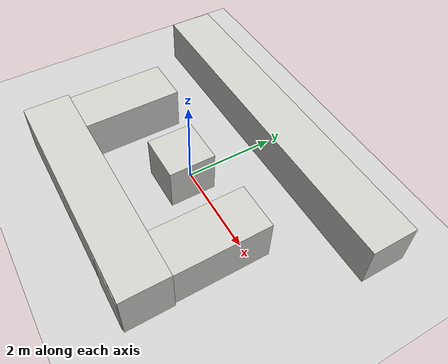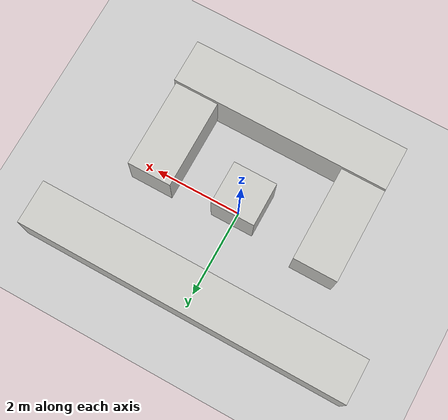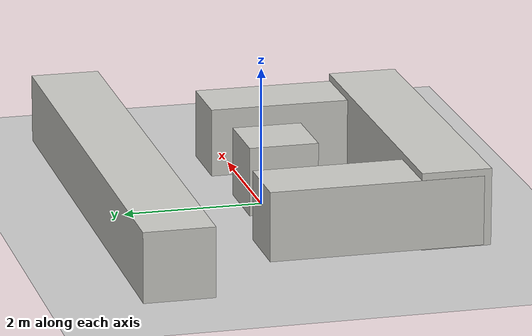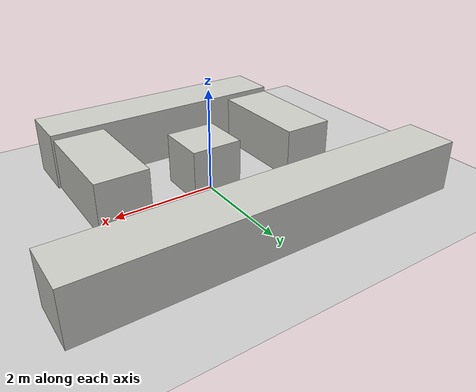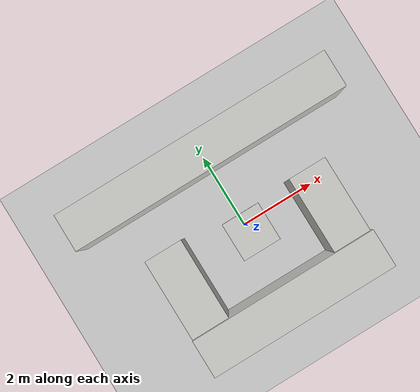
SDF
<sdf version="1.6">
 <world name="default">
  <model name="ground_plane">
   <static>1</static>
   <link name="link">
    <collision name="collision">
     <geometry><plane><normal>0 0 1</normal><size>100 100</size></plane></geometry>
     <surface><friction><ode><mu>100</mu><mu2>50</mu2></ode></friction></surface>
    </collision>
    <visual name="visual">
     <cast_shadows>0</cast_shadows>
     <geometry><plane><normal>0 0 1</normal><size>100 100</size></plane></geometry>
     <material>
      <script><uri>file://media/materials/scripts/gazebo.material</uri><name>Gazebo/Grey</name></script>
     </material>
    </visual>
   </link>
  </model>
  <light name="sun" type="directional">
   <pose>0 0 10 0 -0 0</pose>
   <diffuse>0.8 0.8 0.8 1</diffuse>
   <specular>0.2 0.2 0.2 1</specular>
   <attenuation>
    <range>1000</range>
    <constant>0.9</constant>
    <linear>0.01</linear>
    <quadratic>0.001</quadratic>
   </attenuation>
   <direction>-0.5 0.1 -0.9</direction>
  </light>
  <gravity>0 0 -9.8</gravity>
  <magnetic_field>6e-06 2.3e-05 -4.2e-05</magnetic_field>
  <atmosphere type="adiabatic"/>
  <physics name="default_physics" default="0" type="ode">
   <max_step_size>0.001</max_step_size>
   <real_time_factor>1</real_time_factor>
   <real_time_update_rate>1000</real_time_update_rate>
  </physics>
  <scene><ambient>0.4 0.4 0.4 1</ambient><background>0.7 0.7 0.7 1</background><shadows>1</shadows></scene>
  <spherical_coordinates>
   <surface_model>EARTH_WGS84</surface_model>
   <latitude_deg>0</latitude_deg>
   <longitude_deg>0</longitude_deg>
   <elevation>0</elevation>
   <heading_deg>0</heading_deg>
  </spherical_coordinates>
  <model name="small_exit">
   <link name="link_0">
    <pose>0.02614 0.284108 0 0 -0 0</pose>
    <inertial>
     <mass>1</mass>
     <inertia>
      <ixx>0.166667</ixx>
      <ixy>0</ixy>
      <ixz>0</ixz>
      <iyy>0.166667</iyy>
      <iyz>0</iyz>
      <izz>0.166667</izz>
     </inertia>
    </inertial>
    <visual name="visual">
     <geometry><box><size>1 1 1</size></box></geometry>
     <material>
      <lighting>1</lighting>
      <script><uri>file://media/materials/scripts/gazebo.material</uri><name>Gazebo/CeilingTiled</name></script>
     </material>
    </visual>
    <collision name="collision">
     <geometry><box><size>1 1 1</size></box></geometry>
     <surface>
      <friction>
       <ode><mu>1</mu><mu2>1</mu2><fdir1>0 0 0</fdir1><slip1>0</slip1><slip2>0</slip2></ode>
       <torsional>
        <coefficient>1</coefficient>
        <patch_radius>0</patch_radius>
        <surface_radius>0</surface_radius>
        <use_patch_radius>1</use_patch_radius>
        <ode><slip>0</slip></ode>
       </torsional>
      </friction>
      <bounce><restitution_coefficient>0</restitution_coefficient><threshold>1e+06</threshold></bounce>
      <contact>
       <collide_without_contact>0</collide_without_contact>
       <collide_without_contact_bitmask>1</collide_without_contact_bitmask>
       <collide_bitmask>1</collide_bitmask>
       <ode>
        <soft_cfm>0</soft_cfm>
        <soft_erp>0.2</soft_erp>
        <kp>1e+13</kp>
        <kd>1</kd>
        <max_vel>0.01</max_vel>
        <min_depth>0</min_depth>
       </ode>
       <bullet>
        <split_impulse>1</split_impulse>
        <split_impulse_penetration_threshold>-0.01</split_impulse_penetration_threshold>
        <soft_cfm>0</soft_cfm>
        <soft_erp>0.2</soft_erp>
        <kp>1e+13</kp>
        <kd>1</kd>
       </bullet>
      </contact>
     </surface>
    </collision>
   </link>
   <link name="link_1">
    <pose>0.000233 -1.65787 0 0 -0 0</pose>
    <inertial>
     <mass>5.97189</mass>
     <inertia><ixx>1.21837</ixx><ixy>0</ixy><ixz>0</ixz><iyy>12.976</iyy><iyz>0</iyz><izz>12.753</izz></inertia>
    </inertial>
    <visual name="visual">
     <geometry><box><size>4.96238 1 1.20341</size></box></geometry>
     <material>
      <lighting>1</lighting>
      <script><uri>file://media/materials/scripts/gazebo.material</uri><name>Gazebo/CeilingTiled</name></script>
     </material>
    </visual>
    <collision name="collision">
     <geometry><box><size>4.96238 1 1.20341</size></box></geometry>
     <surface>
      <friction>
       <ode><mu>1</mu><mu2>1</mu2><fdir1>0 0 0</fdir1><slip1>0</slip1><slip2>0</slip2></ode>
       <torsional>
        <coefficient>1</coefficient>
        <patch_radius>0</patch_radius>
        <surface_radius>0</surface_radius>
        <use_patch_radius>1</use_patch_radius>
        <ode><slip>0</slip></ode>
       </torsional>
      </friction>
      <bounce><restitution_coefficient>0</restitution_coefficient><threshold>1e+06</threshold></bounce>
      <contact>
       <collide_without_contact>0</collide_without_contact>
       <collide_without_contact_bitmask>1</collide_without_contact_bitmask>
       <collide_bitmask>1</collide_bitmask>
       <ode>
        <soft_cfm>0</soft_cfm>
        <soft_erp>0.2</soft_erp>
        <kp>1e+13</kp>
        <kd>1</kd>
        <max_vel>0.01</max_vel>
        <min_depth>0</min_depth>
       </ode>
       <bullet>
        <split_impulse>1</split_impulse>
        <split_impulse_penetration_threshold>-0.01</split_impulse_penetration_threshold>
        <soft_cfm>0</soft_cfm>
        <soft_erp>0.2</soft_erp>
        <kp>1e+13</kp>
        <kd>1</kd>
       </bullet>
      </contact>
     </surface>
    </collision>
   </link>
   <link name="link_2">
    <pose>1.94019 -0.649509 0 0 -0 0</pose>
    <inertial>
     <mass>3.04777</mass>
     <inertia><ixx>2.61319</ixx><ixy>0</ixy><ixz>0</ixz><iyy>0.507962</iyy><iyz>0</iyz><izz>2.61319</izz></inertia>
    </inertial>
    <visual name="visual">
     <geometry><box><size>1 3.04777 1</size></box></geometry>
     <material>
      <lighting>1</lighting>
      <script><uri>file://media/materials/scripts/gazebo.material</uri><name>Gazebo/CeilingTiled</name></script>
     </material>
    </visual>
    <collision name="collision">
     <geometry><box><size>1 3.04777 1</size></box></geometry>
     <surface>
      <friction>
       <ode><mu>1</mu><mu2>1</mu2><fdir1>0 0 0</fdir1><slip1>0</slip1><slip2>0</slip2></ode>
       <torsional>
        <coefficient>1</coefficient>
        <patch_radius>0</patch_radius>
        <surface_radius>0</surface_radius>
        <use_patch_radius>1</use_patch_radius>
        <ode><slip>0</slip></ode>
       </torsional>
      </friction>
      <bounce><restitution_coefficient>0</restitution_coefficient><threshold>1e+06</threshold></bounce>
      <contact>
       <collide_without_contact>0</collide_without_contact>
       <collide_without_contact_bitmask>1</collide_without_contact_bitmask>
       <collide_bitmask>1</collide_bitmask>
       <ode>
        <soft_cfm>0</soft_cfm>
        <soft_erp>0.2</soft_erp>
        <kp>1e+13</kp>
        <kd>1</kd>
        <max_vel>0.01</max_vel>
        <min_depth>0</min_depth>
       </ode>
       <bullet>
        <split_impulse>1</split_impulse>
        <split_impulse_penetration_threshold>-0.01</split_impulse_penetration_threshold>
        <soft_cfm>0</soft_cfm>
        <soft_erp>0.2</soft_erp>
        <kp>1e+13</kp>
        <kd>1</kd>
       </bullet>
      </contact>
     </surface>
    </collision>
   </link>
   <link name="link_2_clone">
    <pose>-1.98393 -0.528781 0 0 -0 0</pose>
    <inertial>
     <mass>3.04777</mass>
     <inertia><ixx>2.61319</ixx><ixy>0</ixy><ixz>0</ixz><iyy>0.507962</iyy><iyz>0</iyz><izz>2.61319</izz></inertia>
    </inertial>
    <visual name="visual">
     <geometry><box><size>1 3.04777 1</size></box></geometry>
     <material>
      <lighting>1</lighting>
      <script><uri>file://media/materials/scripts/gazebo.material</uri><name>Gazebo/CeilingTiled</name></script>
     </material>
    </visual>
    <collision name="collision">
     <geometry><box><size>1 3.04777 1</size></box></geometry>
     <surface>
      <friction>
       <ode><mu>1</mu><mu2>1</mu2><fdir1>0 0 0</fdir1><slip1>0</slip1><slip2>0</slip2></ode>
       <torsional>
        <coefficient>1</coefficient>
        <patch_radius>0</patch_radius>
        <surface_radius>0</surface_radius>
        <use_patch_radius>1</use_patch_radius>
        <ode><slip>0</slip></ode>
       </torsional>
      </friction>
      <bounce><restitution_coefficient>0</restitution_coefficient><threshold>1e+06</threshold></bounce>
      <contact>
       <collide_without_contact>0</collide_without_contact>
       <collide_without_contact_bitmask>1</collide_without_contact_bitmask>
       <collide_bitmask>1</collide_bitmask>
       <ode>
        <soft_cfm>0</soft_cfm>
        <soft_erp>0.2</soft_erp>
        <kp>1e+13</kp>
        <kd>1</kd>
        <max_vel>0.01</max_vel>
        <min_depth>0</min_depth>
       </ode>
       <bullet>
        <split_impulse>1</split_impulse>
        <split_impulse_penetration_threshold>-0.01</split_impulse_penetration_threshold>
        <soft_cfm>0</soft_cfm>
        <soft_erp>0.2</soft_erp>
        <kp>1e+13</kp>
        <kd>1</kd>
       </bullet>
      </contact>
     </surface>
    </collision>
   </link>
   <link name="link_2_clone_0">
    <pose>0.017361 2.55205 0 0 0 -1.57215</pose>
    <inertial>
     <mass>7.50541</mass>
     <inertia><ixx>35.8578</ixx><ixy>0</ixy><ixz>0</ixz><iyy>1.2509</iyy><iyz>0</iyz><izz>35.8578</izz></inertia>
    </inertial>
    <visual name="visual">
     <geometry><box><size>1 7.50539 1</size></box></geometry>
     <material>
      <lighting>1</lighting>
      <script><uri>file://media/materials/scripts/gazebo.material</uri><name>Gazebo/CeilingTiled</name></script>
     </material>
    </visual>
    <collision name="collision">
     <geometry><box><size>1 7.50539 1</size></box></geometry>
     <surface>
      <friction>
       <ode><mu>1</mu><mu2>1</mu2><fdir1>0 0 0</fdir1><slip1>0</slip1><slip2>0</slip2></ode>
       <torsional>
        <coefficient>1</coefficient>
        <patch_radius>0</patch_radius>
        <surface_radius>0</surface_radius>
        <use_patch_radius>1</use_patch_radius>
        <ode><slip>0</slip></ode>
       </torsional>
      </friction>
      <bounce><restitution_coefficient>0</restitution_coefficient><threshold>1e+06</threshold></bounce>
      <contact>
       <collide_without_contact>0</collide_without_contact>
       <collide_without_contact_bitmask>1</collide_without_contact_bitmask>
       <collide_bitmask>1</collide_bitmask>
       <ode>
        <soft_cfm>0</soft_cfm>
        <soft_erp>0.2</soft_erp>
        <kp>1e+13</kp>
        <kd>1</kd>
        <max_vel>0.01</max_vel>
        <min_depth>0</min_depth>
       </ode>
       <bullet>
        <split_impulse>1</split_impulse>
        <split_impulse_penetration_threshold>-0.01</split_impulse_penetration_threshold>
        <soft_cfm>0</soft_cfm>
        <soft_erp>0.2</soft_erp>
        <kp>1e+13</kp>
        <kd>1</kd>
       </bullet>
      </contact>
     </surface>
    </collision>
   </link>
   <static>0</static>
   <pose>-0.012148 -0.491406 0.5 0 -0 0</pose>
  </model>
 </world>
</sdf>
